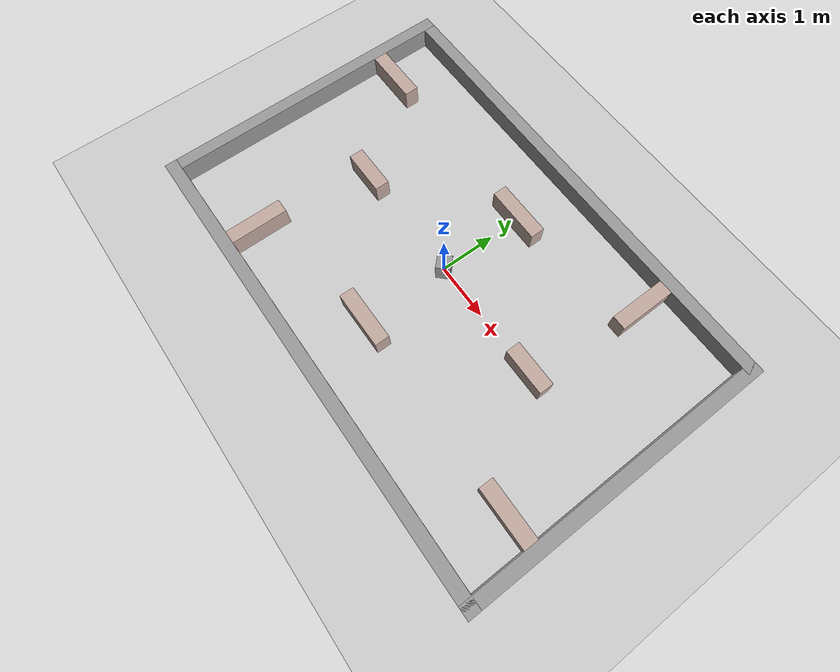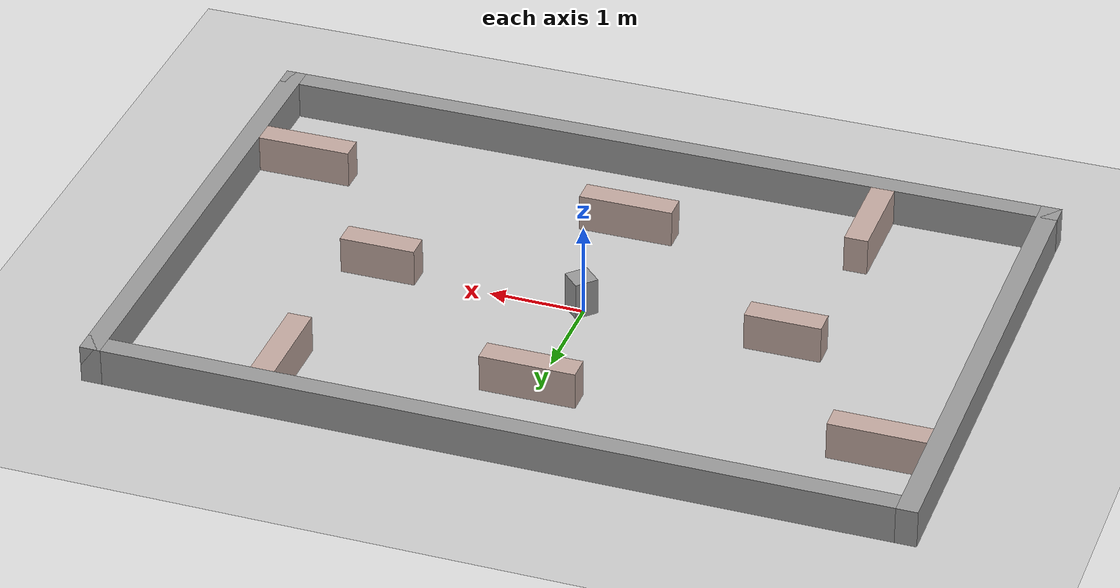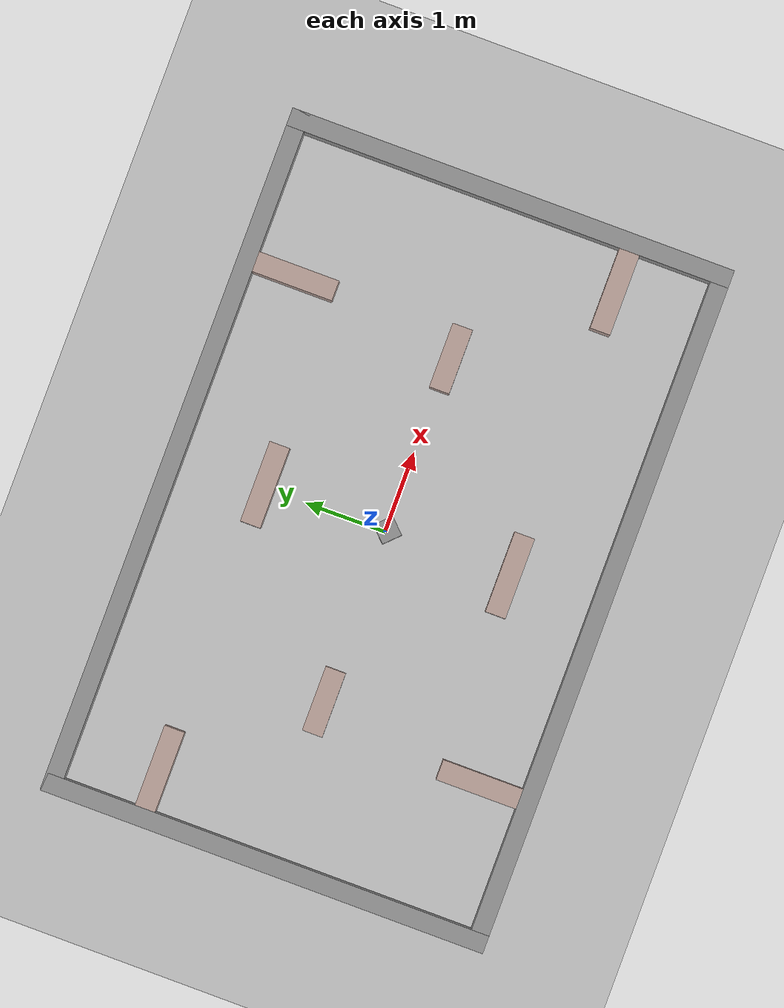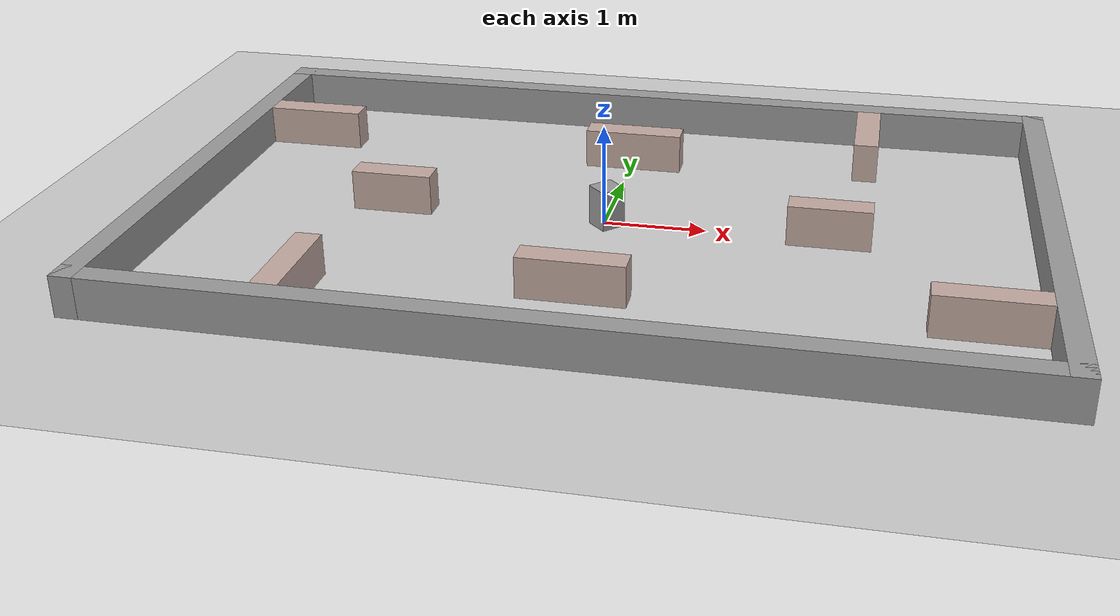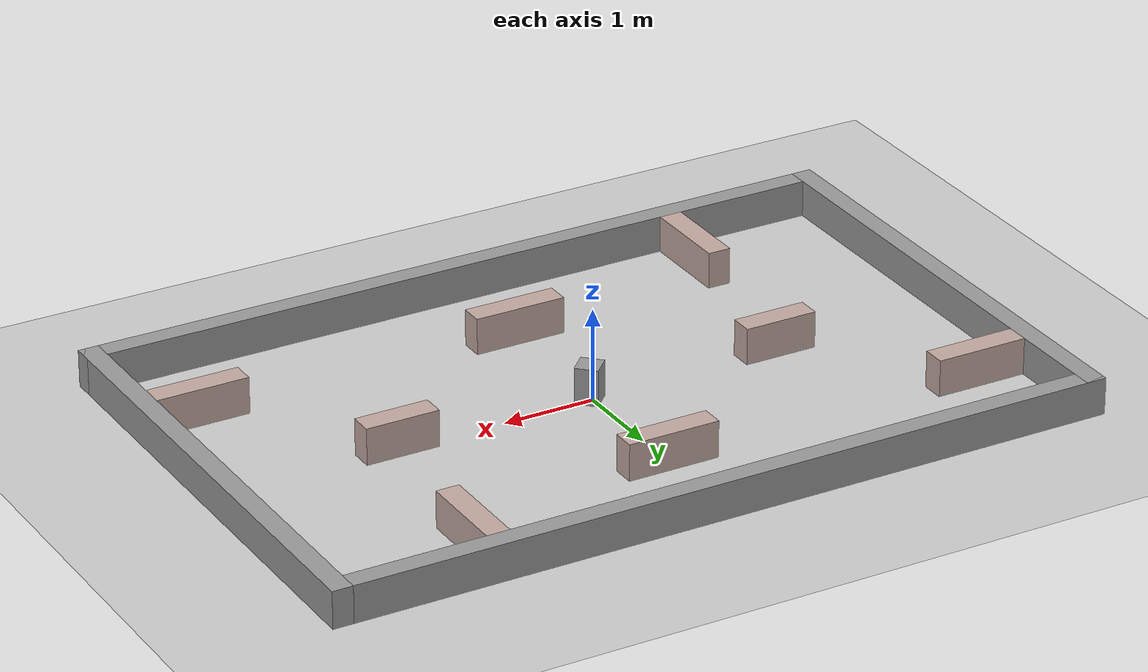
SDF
<sdf version="1.6">
 <world name="default">
  <light name="sun" type="directional">
   <pose>0 0 10 0 -0 0</pose>
   <diffuse>0.8 0.8 0.8 1</diffuse>
   <specular>0.1 0.1 0.1 1</specular>
   <attenuation>
    <range>1000</range>
    <constant>0.9</constant>
    <linear>0.01</linear>
    <quadratic>0.001</quadratic>
   </attenuation>
   <direction>-0.5 0.5 -1</direction>
  </light>
  <model name="ground_plane">
   <static>1</static>
   <link name="link">
    <collision name="collision">
     <geometry><plane><normal>0 0 1</normal><size>100 100</size></plane></geometry>
     <surface><friction><ode><mu>100</mu><mu2>50</mu2></ode></friction></surface>
    </collision>
    <visual name="visual">
     <cast_shadows>0</cast_shadows>
     <geometry><plane><normal>0 0 1</normal><size>100 100</size></plane></geometry>
     <material>
      <script><uri>file://media/materials/scripts/gazebo.material</uri><name>Gazebo/Grey</name></script>
     </material>
    </visual>
   </link>
  </model>
  <gravity>0 0 -9.8</gravity>
  <magnetic_field>6e-06 2.3e-05 -4.2e-05</magnetic_field>
  <atmosphere type="adiabatic"/>
  <physics name="default_physics" default="0" type="ode">
   <max_step_size>0.001</max_step_size>
   <real_time_factor>1</real_time_factor>
   <real_time_update_rate>1000</real_time_update_rate>
  </physics>
  <scene><ambient>0.4 0.4 0.4 1</ambient><background>0.7 0.7 0.7 1</background><shadows>1</shadows></scene>
  <spherical_coordinates>
   <surface_model>EARTH_WGS84</surface_model>
   <latitude_deg>0</latitude_deg>
   <longitude_deg>0</longitude_deg>
   <elevation>0</elevation>
   <heading_deg>0</heading_deg>
  </spherical_coordinates>
  <model name="ICRA2020_1">
   <pose>0.0292 -0.022708 0 0 -0 0</pose>
   <link name="Wall_1">
    <collision name="Wall_1_Collision">
     <geometry><box><size>5.54 0.22 0.4</size></box></geometry>
     <pose>0 0 0.2 0 -0 0</pose>
    </collision>
    <visual name="Wall_1_Visual">
     <pose>0 0 0.2 0 -0 0</pose>
     <geometry><box><size>5.54 0.22 0.4</size></box></geometry>
     <material>
      <script><uri>file://media/materials/scripts/gazebo.material</uri><name>Gazebo/Grey</name></script>
      <ambient>1 1 1 1</ambient>
     </material>
    </visual>
    <pose>-4.165 0 0 0 -0 1.5708</pose>
   </link>
   <link name="Wall_10">
    <collision name="Wall_10_Collision">
     <geometry><box><size>1 0.25 0.4</size></box></geometry>
     <pose>0 0 0.2 0 -0 0</pose>
    </collision>
    <visual name="Wall_10_Visual">
     <pose>0 0 0.2 0 -0 0</pose>
     <geometry><box><size>1 0.25 0.4</size></box></geometry>
     <material>
      <script><uri>file://media/materials/scripts/gazebo.material</uri><name>Gazebo/Grey</name></script>
      <ambient>0.760784 0.662745 0.627451 1</ambient>
     </material>
    </visual>
    <pose>0 -1.535 0 0 -0 3.14159</pose>
   </link>
   <link name="Wall_12">
    <collision name="Wall_12_Collision">
     <geometry><box><size>1 0.25 0.4</size></box></geometry>
     <pose>0 0 0.2 0 -0 0</pose>
    </collision>
    <visual name="Wall_12_Visual">
     <pose>0 0 0.2 0 -0 0</pose>
     <geometry><box><size>1 0.25 0.4</size></box></geometry>
     <material>
      <script><uri>file://media/materials/scripts/gazebo.material</uri><name>Gazebo/Grey</name></script>
      <ambient>0.760784 0.662745 0.627451 1</ambient>
     </material>
    </visual>
    <pose>3.555 -1.535 0 0 -0 3.14159</pose>
   </link>
   <link name="Wall_14">
    <collision name="Wall_14_Collision">
     <geometry><box><size>0.25 0.25 0.4</size></box></geometry>
     <pose>0 0 0.2 0 -0 0</pose>
    </collision>
    <visual name="Wall_14_Visual">
     <pose>0 0 0.2 0 -0 0</pose>
     <geometry><box><size>0.25 0.25 0.4</size></box></geometry>
     <material>
      <script><uri>file://media/materials/scripts/gazebo.material</uri><name>Gazebo/Grey</name></script>
      <ambient>1 1 1 1</ambient>
     </material>
    </visual>
    <pose>0 0 0 0 -0 0.7853</pose>
   </link>
   <link name="Wall_16">
    <collision name="Wall_16_Collision">
     <geometry><box><size>1 0.25 0.4</size></box></geometry>
     <pose>0 0 0.2 0 -0 0</pose>
    </collision>
    <visual name="Wall_16_Visual">
     <pose>0 0 0.2 0 -0 0</pose>
     <geometry><box><size>1 0.25 0.4</size></box></geometry>
     <material>
      <script><uri>file://media/materials/scripts/gazebo.material</uri><name>Gazebo/Grey</name></script>
      <ambient>0.760784 0.662745 0.627451 1</ambient>
     </material>
    </visual>
    <pose>2.425 2.05 0 0 0 -1.5708</pose>
   </link>
   <link name="Wall_18">
    <collision name="Wall_18_Collision">
     <geometry><box><size>0.8 0.25 0.4</size></box></geometry>
     <pose>0 0 0.2 0 -0 0</pose>
    </collision>
    <visual name="Wall_18_Visual">
     <pose>0 0 0.2 0 -0 0</pose>
     <geometry><box><size>0.8 0.25 0.4</size></box></geometry>
     <material>
      <script><uri>file://media/materials/scripts/gazebo.material</uri><name>Gazebo/Grey</name></script>
      <ambient>0.760784 0.662745 0.627451 1</ambient>
     </material>
    </visual>
    <pose>-2.15 0 0 0 -0 0</pose>
   </link>
   <link name="Wall_2">
    <collision name="Wall_2_Collision">
     <geometry><box><size>8.55 0.22 0.4</size></box></geometry>
     <pose>0 0 0.2 0 -0 0</pose>
    </collision>
    <visual name="Wall_2_Visual">
     <pose>0 0 0.2 0 -0 0</pose>
     <geometry><box><size>8.55 0.22 0.4</size></box></geometry>
     <material>
      <script><uri>file://media/materials/scripts/gazebo.material</uri><name>Gazebo/Grey</name></script>
      <ambient>1 1 1 1</ambient>
     </material>
    </visual>
    <pose>0 2.66 0 0 -0 0</pose>
   </link>
   <link name="Wall_20">
    <collision name="Wall_20_Collision">
     <geometry><box><size>1 0.25 0.4</size></box></geometry>
     <pose>0 0 0.2 0 -0 0</pose>
    </collision>
    <visual name="Wall_20_Visual">
     <pose>0 0 0.2 0 -0 0</pose>
     <geometry><box><size>1 0.25 0.4</size></box></geometry>
     <material>
      <script><uri>file://media/materials/scripts/gazebo.material</uri><name>Gazebo/Grey</name></script>
      <ambient>0.760784 0.662745 0.627451 1</ambient>
     </material>
    </visual>
    <pose>-2.425 -2.05 0 0 -0 1.5708</pose>
   </link>
   <link name="Wall_22">
    <collision name="Wall_22_Collision">
     <geometry><box><size>0.8 0.25 0.4</size></box></geometry>
     <pose>0 0 0.2 0 -0 0</pose>
    </collision>
    <visual name="Wall_22_Visual">
     <pose>0 0 0.2 0 -0 0</pose>
     <geometry><box><size>0.8 0.25 0.4</size></box></geometry>
     <material>
      <script><uri>file://media/materials/scripts/gazebo.material</uri><name>Gazebo/Grey</name></script>
      <ambient>0.760784 0.662745 0.627451 1</ambient>
     </material>
    </visual>
    <pose>2.15 0 0 0 -0 3.14159</pose>
   </link>
   <link name="Wall_3">
    <collision name="Wall_3_Collision">
     <geometry><box><size>5.54 0.22 0.4</size></box></geometry>
     <pose>0 0 0.2 0 -0 0</pose>
    </collision>
    <visual name="Wall_3_Visual">
     <pose>0 0 0.2 0 -0 0</pose>
     <geometry><box><size>5.54 0.22 0.4</size></box></geometry>
     <material>
      <script><uri>file://media/materials/scripts/gazebo.material</uri><name>Gazebo/Grey</name></script>
      <ambient>1 1 1 1</ambient>
     </material>
    </visual>
    <pose>4.165 0 0 0 0 -1.5708</pose>
   </link>
   <link name="Wall_4">
    <collision name="Wall_4_Collision">
     <geometry><box><size>8.55 0.22 0.4</size></box></geometry>
     <pose>0 0 0.2 0 -0 0</pose>
    </collision>
    <visual name="Wall_4_Visual">
     <pose>0 0 0.2 0 -0 0</pose>
     <geometry><box><size>8.55 0.22 0.4</size></box></geometry>
     <material>
      <script><uri>file://media/materials/scripts/gazebo.material</uri><name>Gazebo/Grey</name></script>
      <ambient>1 1 1 1</ambient>
     </material>
    </visual>
    <pose>0 -2.66 0 0 -0 3.14159</pose>
   </link>
   <link name="Wall_6">
    <collision name="Wall_6_Collision">
     <geometry><box><size>1 0.25 0.4</size></box></geometry>
     <pose>0 0 0.2 0 -0 0</pose>
    </collision>
    <visual name="Wall_6_Visual">
     <pose>0 0 0.2 0 -0 0</pose>
     <geometry><box><size>1 0.25 0.4</size></box></geometry>
     <material>
      <script><uri>file://media/materials/scripts/gazebo.material</uri><name>Gazebo/Grey</name></script>
      <ambient>0.760784 0.662745 0.627451 1</ambient>
     </material>
    </visual>
    <pose>-3.555 1.535 0 0 -0 0</pose>
   </link>
   <link name="Wall_8">
    <collision name="Wall_8_Collision">
     <geometry><box><size>1 0.25 0.4</size></box></geometry>
     <pose>0 0 0.2 0 -0 0</pose>
    </collision>
    <visual name="Wall_8_Visual">
     <pose>0 0 0.2 0 -0 0</pose>
     <geometry><box><size>1 0.25 0.4</size></box></geometry>
     <material>
      <script><uri>file://media/materials/scripts/gazebo.material</uri><name>Gazebo/Grey</name></script>
      <ambient>0.760784 0.662745 0.627451 1</ambient>
     </material>
    </visual>
    <pose>0 1.535 0 0 -0 0</pose>
   </link>
   <static>1</static>
  </model>
 </world>
</sdf>
